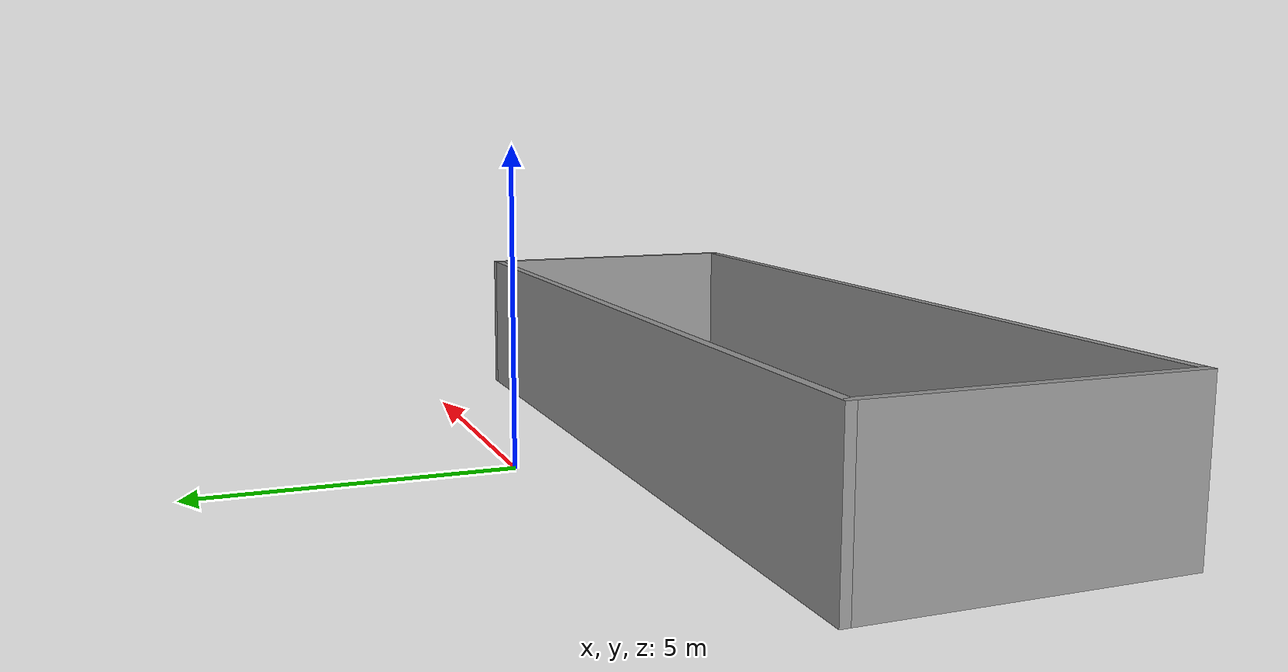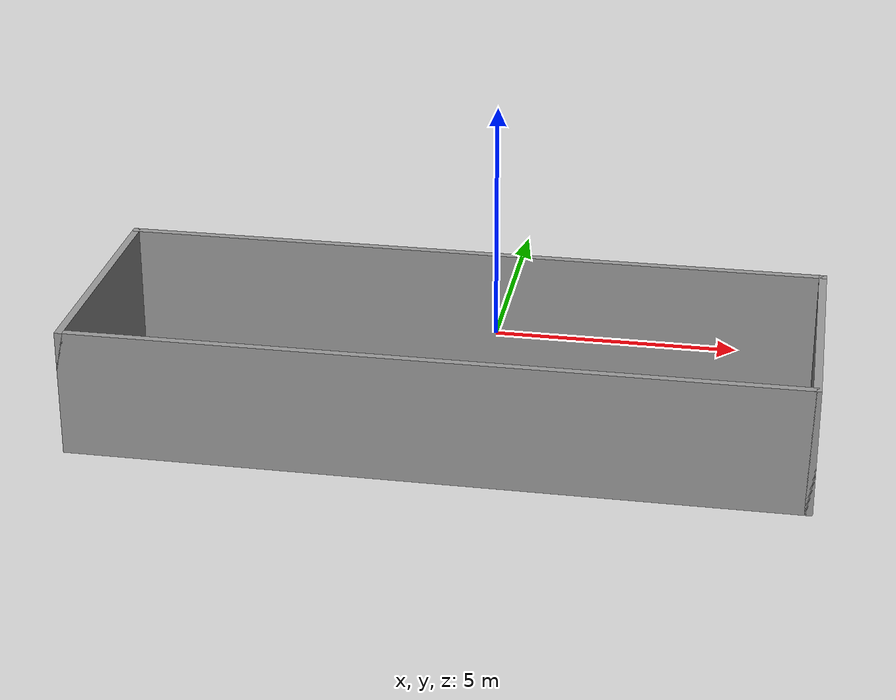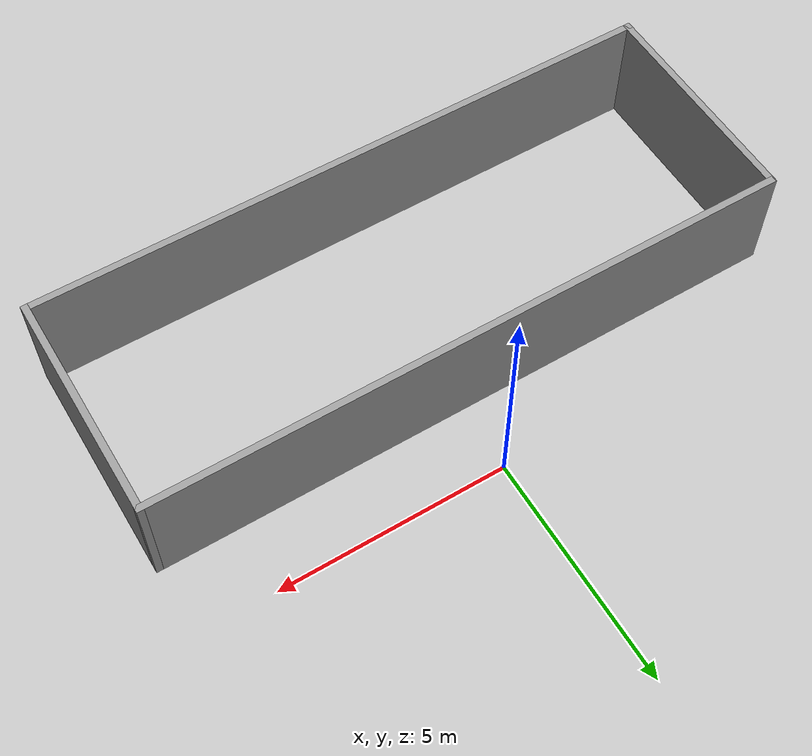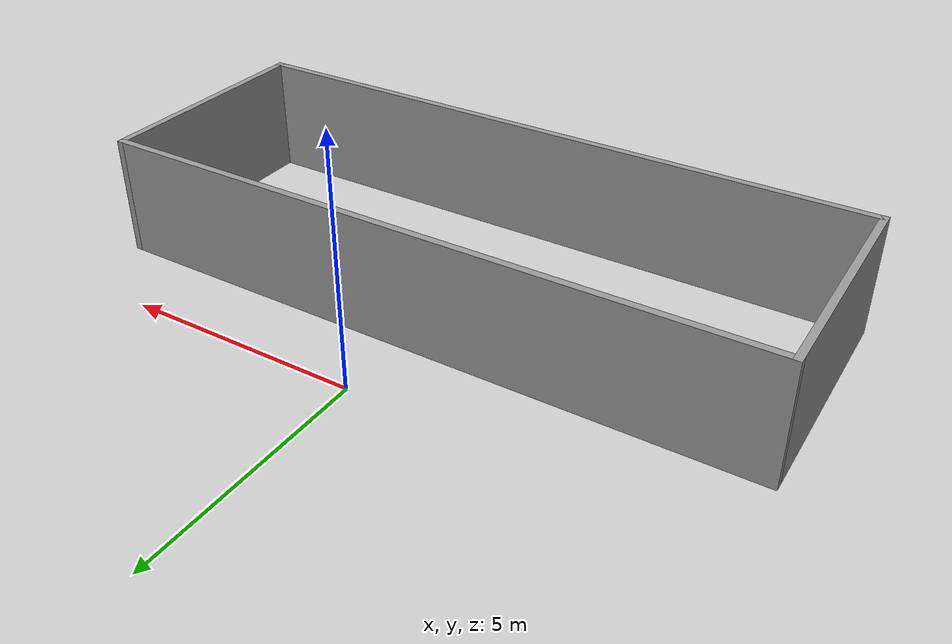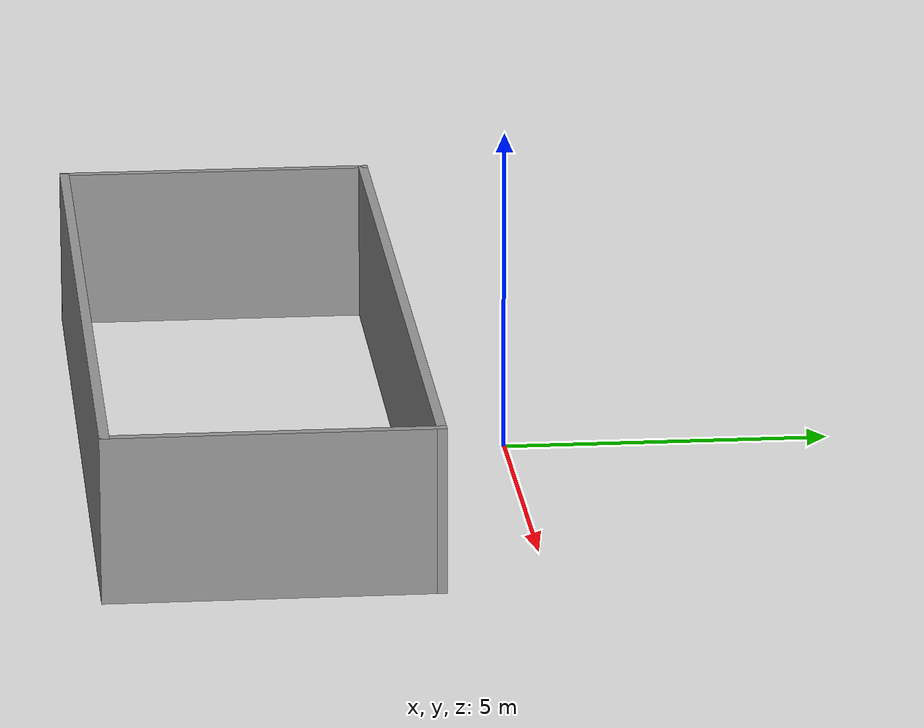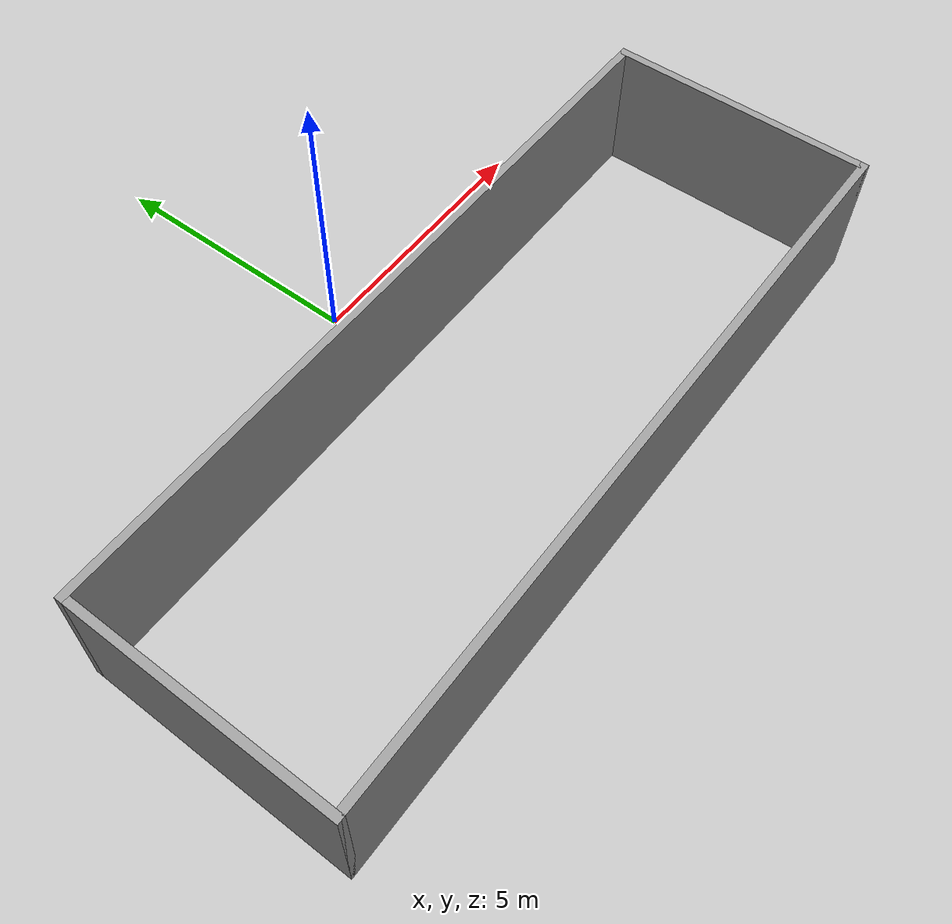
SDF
<?xml version='1.0'?>
<sdf version='1.7'>
  <model name='room'>
    <pose>-0.275 -3.2525 0 0 -0 0</pose>
    <link name='Wall_0'>
      <collision name='Wall_0_Collision'>
        <geometry>
          <box>
            <size>5 0.15 2.5</size>
          </box>
        </geometry>
        <pose>0 0 1.25 0 -0 0</pose>
      </collision>
      <visual name='Wall_0_Visual'>
        <pose>0 0 1.25 0 -0 0</pose>
        <geometry>
          <box>
            <size>5 0.15 2.5</size>
          </box>
        </geometry>
        <material>
          <script>
            <uri>file://media/materials/scripts/gazebo.material</uri>
            <name>Gazebo/Grey</name>
          </script>
          <ambient>1 1 1 1</ambient>
        </material>
        <meta>
          <layer>0</layer>
        </meta>
      </visual>
      <pose>-6.925 -0.7525 0 0 -0 -1.5708</pose>
    </link>
    <link name='Wall_1'>
      <collision name='Wall_1_Collision'>
        <geometry>
          <box>
            <size>14 0.15 2.5</size>
          </box>
        </geometry>
        <pose>0 0 1.25 0 -0 0</pose>
      </collision>
      <visual name='Wall_1_Visual'>
        <pose>0 0 1.25 0 -0 0</pose>
        <geometry>
          <box>
            <size>14 0.15 2.5</size>
          </box>
        </geometry>
        <material>
          <script>
            <uri>file://media/materials/scripts/gazebo.material</uri>
            <name>Gazebo/Grey</name>
          </script>
          <ambient>1 1 1 1</ambient>
        </material>
        <meta>
          <layer>0</layer>
        </meta>
      </visual>
      <pose>-0 -3.1775 0 0 -0 0</pose>
    </link>
    <link name='Wall_2'>
      <collision name='Wall_2_Collision'>
        <geometry>
          <box>
            <size>5 0.15 2.5</size>
          </box>
        </geometry>
        <pose>0 0 1.25 0 -0 0</pose>
      </collision>
      <visual name='Wall_2_Visual'>
        <pose>0 0 1.25 0 -0 0</pose>
        <geometry>
          <box>
            <size>5 0.15 2.5</size>
          </box>
        </geometry>
        <material>
          <script>
            <uri>file://media/materials/scripts/gazebo.material</uri>
            <name>Gazebo/Grey</name>
          </script>
          <ambient>1 1 1 1</ambient>
        </material>
        <meta>
          <layer>0</layer>
        </meta>
      </visual>
      <pose>6.925 -0.7525 0 0 -0 1.5708</pose>
    </link>
    <link name='Wall_3'>
      <collision name='Wall_3_Collision'>
        <geometry>
          <box>
            <size>14 0.15 2.5</size>
          </box>
        </geometry>
        <pose>0 0 1.25 0 -0 0</pose>
      </collision>
      <visual name='Wall_3_Visual'>
        <pose>0 0 1.25 0 -0 0</pose>
        <geometry>
          <box>
            <size>14 0.15 2.5</size>
          </box>
        </geometry>
        <material>
          <script>
            <uri>file://media/materials/scripts/gazebo.material</uri>
            <name>Gazebo/Grey</name>
          </script>
          <ambient>1 1 1 1</ambient>
        </material>
        <meta>
          <layer>0</layer>
        </meta>
      </visual>
      <pose>-0 1.6725 0 0 -0 3.14159</pose>
    </link>
    <static>1</static>
  </model>
</sdf>
